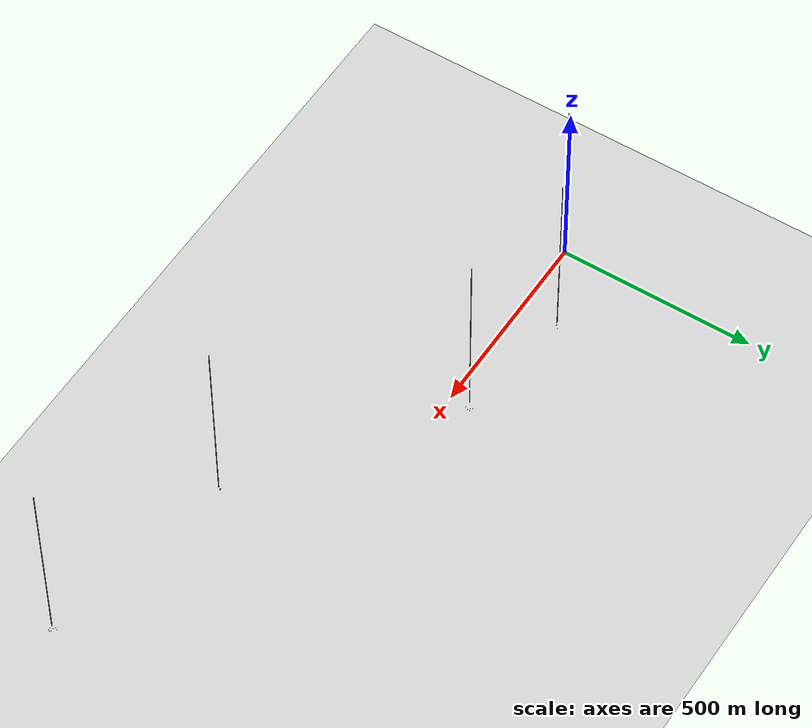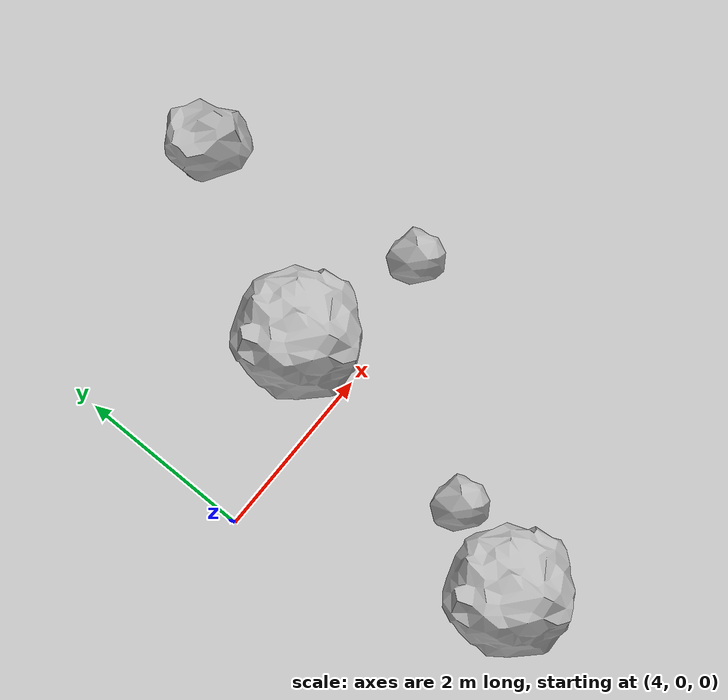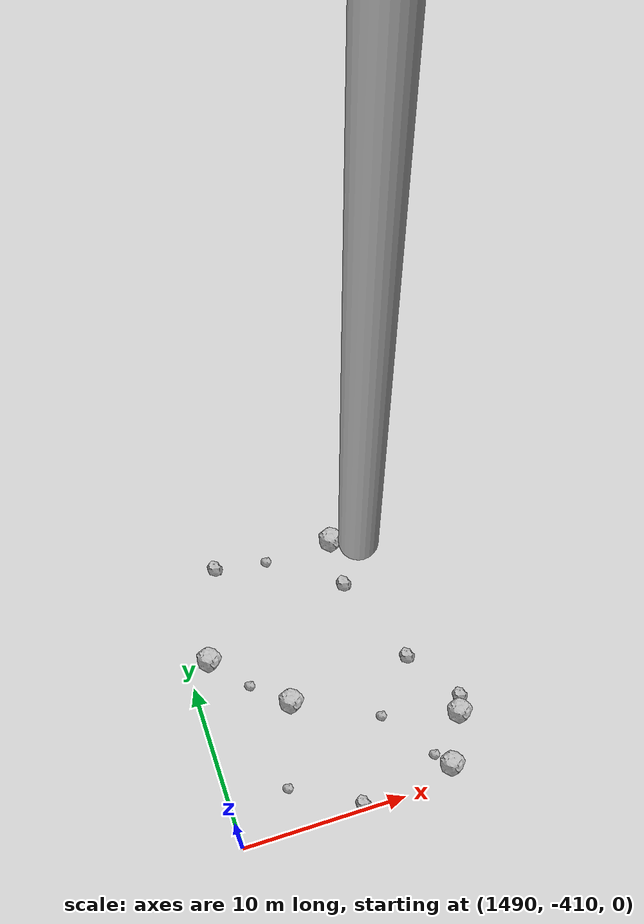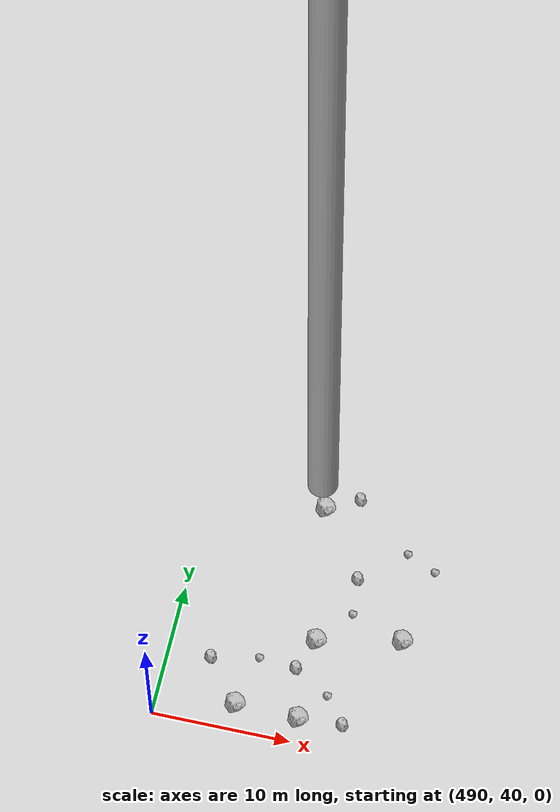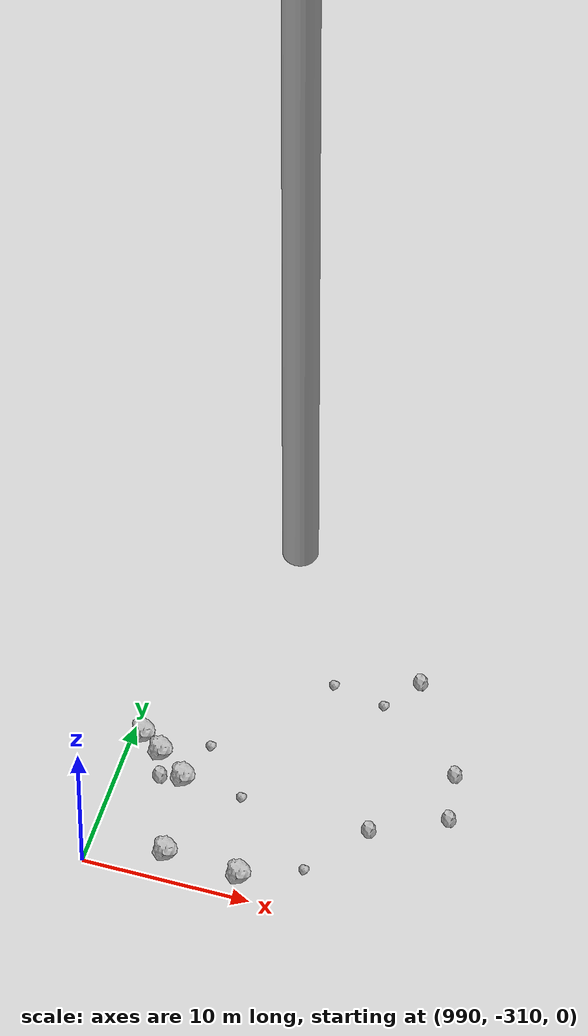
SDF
<?xml version="1.0" ?>
<sdf version="1.6">
  <world name="default">

    <include>
      <uri>model://custom_ground</uri>
    </include>

    <include>
      <uri>model://sun</uri>
    </include>

    <spherical_coordinates>
      <surface_model>EARTH_WGS84</surface_model>
      <latitude_deg>38.161479</latitude_deg>
      <longitude_deg>-122.454630</longitude_deg>
      <elevation>488.0</elevation>
      <heading_deg>90</heading_deg>
    </spherical_coordinates>

    <model name="rock1_0_0">
      <include>
        <uri>model://rock1</uri>
        <pose>16.75536092948324 6.011846123286226 0.5 0 0 0</pose>
      </include>
    </model>
    <model name="rock1_0_1">
      <include>
        <uri>model://rock1</uri>
        <pose>5.373063982227135 -2.7838303401648474 0.5 0 0 0</pose>
      </include>
    </model>
    <model name="rock1_0_2">
      <include>
        <uri>model://rock1</uri>
        <pose>6.055891209628972 0.7670467506767782 0.5 0 0 0</pose>
      </include>
    </model>
    <model name="rock1_0_3">
      <include>
        <uri>model://rock1</uri>
        <pose>16.695276076906815 3.7788987444200046 0.5 0 0 0</pose>
      </include>
    </model>
    <model name="rock1_0_4">
      <include>
        <uri>model://rock1</uri>
        <pose>3.7205431522614862 4.717453986573162 0.5 0 0 0</pose>
      </include>
    </model>
    <model name="rock2_0_0">
      <include>
        <uri>model://rock2</uri>
        <pose>10.212944082409006 2.7929742771649586 0.3 0 0 0</pose>
      </include>
    </model>
    <model name="rock2_0_1">
      <include>
        <uri>model://rock2</uri>
        <pose>7.985061977572618 7.250110403806747 0.3 0 0 0</pose>
      </include>
    </model>
    <model name="rock2_0_2">
      <include>
        <uri>model://rock2</uri>
        <pose>7.025169342337188 2.9202596769850118 0.3 0 0 0</pose>
      </include>
    </model>
    <model name="rock2_0_3">
      <include>
        <uri>model://rock2</uri>
        <pose>10.22742318625638 6.598344227592893 0.3 0 0 0</pose>
      </include>
    </model>
    <model name="rock2_0_4">
      <include>
        <uri>model://rock2</uri>
        <pose>15.779914251016056 4.533617211451773 0.3 0 0 0</pose>
      </include>
    </model>
    <model name="rock3_0_0">
      <include>
        <uri>model://rock3</uri>
        <pose>5.7174701227669145 -1.7845742878398916 0.2 0 0 0</pose>
      </include>
    </model>
    <model name="rock3_0_1">
      <include>
        <uri>model://rock3</uri>
        <pose>3.6508348361184995 5.500822756719469 0.2 0 0 0</pose>
      </include>
    </model>
    <model name="rock3_0_2">
      <include>
        <uri>model://rock3</uri>
        <pose>7.489139932292705 0.31277892143767616 0.2 0 0 0</pose>
      </include>
    </model>
    <model name="rock3_0_3">
      <include>
        <uri>model://rock3</uri>
        <pose>3.7442643942394582 -4.513679011473048 0.2 0 0 0</pose>
      </include>
    </model>
    <model name="rock3_0_4">
      <include>
        <uri>model://rock3</uri>
        <pose>8.56160840763617 -6.707526330036724 0.2 0 0 0</pose>
      </include>
    </model>
    <model name="rock1_1_0">
      <include>
        <uri>model://rock1</uri>
        <pose>208.91018218934886 97.95559591392225 0.5 0 0 0</pose>
      </include>
    </model>
    <model name="rock1_1_1">
      <include>
        <uri>model://rock1</uri>
        <pose>200.11412527932035 109.67917202525518 0.5 0 0 0</pose>
      </include>
    </model>
    <model name="rock1_1_2">
      <include>
        <uri>model://rock1</uri>
        <pose>201.37648939737065 102.24317822285772 0.5 0 0 0</pose>
      </include>
    </model>
    <model name="rock1_1_3">
      <include>
        <uri>model://rock1</uri>
        <pose>208.2151242653198 102.51446383550191 0.5 0 0 0</pose>
      </include>
    </model>
    <model name="rock1_1_4">
      <include>
        <uri>model://rock1</uri>
        <pose>194.57916281101802 94.45121176260324 0.5 0 0 0</pose>
      </include>
    </model>
    <model name="rock2_1_0">
      <include>
        <uri>model://rock2</uri>
        <pose>192.13632553431674 103.30738213552497 0.3 0 0 0</pose>
      </include>
    </model>
    <model name="rock2_1_1">
      <include>
        <uri>model://rock2</uri>
        <pose>200.51431706467932 93.70171141372403 0.3 0 0 0</pose>
      </include>
    </model>
    <model name="rock2_1_2">
      <include>
        <uri>model://rock2</uri>
        <pose>191.9173212214077 95.59468158177584 0.3 0 0 0</pose>
      </include>
    </model>
    <model name="rock2_1_3">
      <include>
        <uri>model://rock2</uri>
        <pose>194.19034094761201 102.54653585219211 0.3 0 0 0</pose>
      </include>
    </model>
    <model name="rock2_1_4">
      <include>
        <uri>model://rock2</uri>
        <pose>192.07705622148805 97.73554979908263 0.3 0 0 0</pose>
      </include>
    </model>
    <model name="rock3_1_0">
      <include>
        <uri>model://rock3</uri>
        <pose>205.3273769444897 97.63456514518103 0.2 0 0 0</pose>
      </include>
    </model>
    <model name="rock3_1_1">
      <include>
        <uri>model://rock3</uri>
        <pose>202.53466523676846 104.7612474895591 0.2 0 0 0</pose>
      </include>
    </model>
    <model name="rock3_1_2">
      <include>
        <uri>model://rock3</uri>
        <pose>193.01948003934422 104.52249969212684 0.2 0 0 0</pose>
      </include>
    </model>
    <model name="rock3_1_3">
      <include>
        <uri>model://rock3</uri>
        <pose>201.27263764788813 96.26210694451106 0.2 0 0 0</pose>
      </include>
    </model>
    <model name="rock3_1_4">
      <include>
        <uri>model://rock3</uri>
        <pose>202.45292727314157 108.58835960625771 0.2 0 0 0</pose>
      </include>
    </model>
    <model name="rock1_2_0">
      <include>
        <uri>model://rock1</uri>
        <pose>506.0982356611767 49.1950598980764 0.5 0 0 0</pose>
      </include>
    </model>
    <model name="rock1_2_1">
      <include>
        <uri>model://rock1</uri>
        <pose>498.44586708480205 58.39269333249753 0.5 0 0 0</pose>
      </include>
    </model>
    <model name="rock1_2_2">
      <include>
        <uri>model://rock1</uri>
        <pose>500.1147617069282 47.91203452708026 0.5 0 0 0</pose>
      </include>
    </model>
    <model name="rock1_2_3">
      <include>
        <uri>model://rock1</uri>
        <pose>495.6341193860309 41.85614020262877 0.5 0 0 0</pose>
      </include>
    </model>
    <model name="rock1_2_4">
      <include>
        <uri>model://rock1</uri>
        <pose>500.1906152120664 41.74611074778019 0.5 0 0 0</pose>
      </include>
    </model>
    <model name="rock2_2_0">
      <include>
        <uri>model://rock2</uri>
        <pose>499.15204207866674 45.56671791442962 0.3 0 0 0</pose>
      </include>
    </model>
    <model name="rock2_2_1">
      <include>
        <uri>model://rock2</uri>
        <pose>500.7535406349838 59.72307612324845 0.3 0 0 0</pose>
      </include>
    </model>
    <model name="rock2_2_2">
      <include>
        <uri>model://rock2</uri>
        <pose>503.2906903918067 42.00364432631538 0.3 0 0 0</pose>
      </include>
    </model>
    <model name="rock2_2_3">
      <include>
        <uri>model://rock2</uri>
        <pose>501.91957700906164 53.39447886114854 0.3 0 0 0</pose>
      </include>
    </model>
    <model name="rock2_2_4">
      <include>
        <uri>model://rock2</uri>
        <pose>493.07772804728535 45.06856080699913 0.3 0 0 0</pose>
      </include>
    </model>
    <model name="rock3_2_0">
      <include>
        <uri>model://rock3</uri>
        <pose>502.1623244675541 50.55592238819548 0.2 0 0 0</pose>
      </include>
    </model>
    <model name="rock3_2_1">
      <include>
        <uri>model://rock3</uri>
        <pose>496.4424833097741 45.74962260314906 0.2 0 0 0</pose>
      </include>
    </model>
    <model name="rock3_2_2">
      <include>
        <uri>model://rock3</uri>
        <pose>507.2156172433701 55.09980235799881 0.2 0 0 0</pose>
      </include>
    </model>
    <model name="rock3_2_3">
      <include>
        <uri>model://rock3</uri>
        <pose>505.0293368986568 56.114901254667664 0.2 0 0 0</pose>
      </include>
    </model>
    <model name="rock3_2_4">
      <include>
        <uri>model://rock3</uri>
        <pose>501.7848149172753 43.925976167416444 0.2 0 0 0</pose>
      </include>
    </model>
    <model name="rock1_3_0">
      <include>
        <uri>model://rock1</uri>
        <pose>990.6020801692991 -300.5555024012531 0.5 0 0 0</pose>
      </include>
    </model>
    <model name="rock1_3_1">
      <include>
        <uri>model://rock1</uri>
        <pose>991.9660176988062 -301.4837458214081 0.5 0 0 0</pose>
      </include>
    </model>
    <model name="rock1_3_2">
      <include>
        <uri>model://rock1</uri>
        <pose>998.932404908679 -308.55304517641673 0.5 0 0 0</pose>
      </include>
    </model>
    <model name="rock1_3_3">
      <include>
        <uri>model://rock1</uri>
        <pose>993.787574132282 -302.90252880725797 0.5 0 0 0</pose>
      </include>
    </model>
    <model name="rock1_3_4">
      <include>
        <uri>model://rock1</uri>
        <pose>994.4242568944456 -308.24171257587017 0.5 0 0 0</pose>
      </include>
    </model>
    <model name="rock2_3_0">
      <include>
        <uri>model://rock2</uri>
        <pose>992.4597913695113 -303.09967904549677 0.3 0 0 0</pose>
      </include>
    </model>
    <model name="rock2_3_1">
      <include>
        <uri>model://rock2</uri>
        <pose>1008.8283962765593 -298.0851765540415 0.3 0 0 0</pose>
      </include>
    </model>
    <model name="rock2_3_2">
      <include>
        <uri>model://rock2</uri>
        <pose>1005.1621488417204 -303.3020104470233 0.3 0 0 0</pose>
      </include>
    </model>
    <model name="rock2_3_3">
      <include>
        <uri>model://rock2</uri>
        <pose>1005.0437602836779 -292.20510984090396 0.3 0 0 0</pose>
      </include>
    </model>
    <model name="rock2_3_4">
      <include>
        <uri>model://rock2</uri>
        <pose>1009.3578997579323 -301.2202497419908 0.3 0 0 0</pose>
      </include>
    </model>
    <model name="rock3_3_0">
      <include>
        <uri>model://rock3</uri>
        <pose>997.4168497860115 -303.22370119828656 0.2 0 0 0</pose>
      </include>
    </model>
    <model name="rock3_3_1">
      <include>
        <uri>model://rock3</uri>
        <pose>994.6245122469663 -300.2094371091744 0.2 0 0 0</pose>
      </include>
    </model>
    <model name="rock3_3_2">
      <include>
        <uri>model://rock3</uri>
        <pose>1003.4351164725308 -294.4596887140498 0.2 0 0 0</pose>
      </include>
    </model>
    <model name="rock3_3_3">
      <include>
        <uri>model://rock3</uri>
        <pose>1000.2060625182175 -293.857257881568 0.2 0 0 0</pose>
      </include>
    </model>
    <model name="rock3_3_4">
      <include>
        <uri>model://rock3</uri>
        <pose>1002.3716042877662 -307.07156361838435 0.2 0 0 0</pose>
      </include>
    </model>
    <model name="rock1_4_0">
      <include>
        <uri>model://rock1</uri>
        <pose>1504.6754222427003 -406.1600127248582 0.5 0 0 0</pose>
      </include>
    </model>
    <model name="rock1_4_1">
      <include>
        <uri>model://rock1</uri>
        <pose>1491.375896255959 -398.6442559780725 0.5 0 0 0</pose>
      </include>
    </model>
    <model name="rock1_4_2">
      <include>
        <uri>model://rock1</uri>
        <pose>1503.2393594158125 -409.02057041118417 0.5 0 0 0</pose>
      </include>
    </model>
    <model name="rock1_4_3">
      <include>
        <uri>model://rock1</uri>
        <pose>1500.6340017707898 -393.68564409985026 0.5 0 0 0</pose>
      </include>
    </model>
    <model name="rock1_4_4">
      <include>
        <uri>model://rock1</uri>
        <pose>1495.3118883169698 -402.55418984951433 0.5 0 0 0</pose>
      </include>
    </model>
    <model name="rock2_4_0">
      <include>
        <uri>model://rock2</uri>
        <pose>1497.5001917852273 -409.6262122257828 0.3 0 0 0</pose>
      </include>
    </model>
    <model name="rock2_4_1">
      <include>
        <uri>model://rock2</uri>
        <pose>1504.9905124809136 -405.21692404906 0.3 0 0 0</pose>
      </include>
    </model>
    <model name="rock2_4_2">
      <include>
        <uri>model://rock2</uri>
        <pose>1502.7500325256972 -401.96808027266786 0.3 0 0 0</pose>
      </include>
    </model>
    <model name="rock2_4_3">
      <include>
        <uri>model://rock2</uri>
        <pose>1500.5150411971847 -396.51532262344085 0.3 0 0 0</pose>
      </include>
    </model>
    <model name="rock2_4_4">
      <include>
        <uri>model://rock2</uri>
        <pose>1493.3270759919376 -393.2367388416374 0.3 0 0 0</pose>
      </include>
    </model>
    <model name="rock3_4_0">
      <include>
        <uri>model://rock3</uri>
        <pose>1493.2088325411762 -400.8876066629046 0.2 0 0 0</pose>
      </include>
    </model>
    <model name="rock3_4_1">
      <include>
        <uri>model://rock3</uri>
        <pose>1502.4046865273715 -408.1696930453415 0.2 0 0 0</pose>
      </include>
    </model>
    <model name="rock3_4_2">
      <include>
        <uri>model://rock3</uri>
        <pose>1500.1335202816301 -405.00854414484866 0.2 0 0 0</pose>
      </include>
    </model>
    <model name="rock3_4_3">
      <include>
        <uri>model://rock3</uri>
        <pose>1496.411760531608 -393.78995246686355 0.2 0 0 0</pose>
      </include>
    </model>
    <model name="rock3_4_4">
      <include>
        <uri>model://rock3</uri>
        <pose>1493.547826979591 -407.47074721792404 0.2 0 0 0</pose>
      </include>
    </model>

    <model name="cylinder_1">
      <static>true</static>
      <link name="link">
        <visual name="visual">
          <geometry>
            <cylinder>
              <radius>1</radius>
              <length>500</length>
            </cylinder>
          </geometry>
        </visual>
      </link>
      <pose>10 0 270 0 0 0</pose>
    </model>

    <model name="cylinder_2">
      <static>true</static>
      <link name="link">
        <visual name="visual">
          <geometry>
            <cylinder>
              <radius>1</radius>
              <length>500</length>
            </cylinder>
          </geometry>
        </visual>
      </link>
      <pose>200 100 270 0 0 0</pose>
    </model>

    <model name="cylinder_3">
      <static>true</static>
      <link name="link">
        <visual name="visual">
          <geometry>
            <cylinder>
              <radius>1</radius>
              <length>500</length>
            </cylinder>
          </geometry>
        </visual>
      </link>
      <pose>500 50 270 0 0 0</pose>
    </model>

    <model name="cylinder_4">
      <static>true</static>
      <link name="link">
        <visual name="visual">
          <geometry>
            <cylinder>
              <radius>1</radius>
              <length>500</length>
            </cylinder>
          </geometry>
        </visual>
      </link>
      <pose>1000 -300 270 0 0 0</pose>
    </model>

    <model name="cylinder_5">
      <static>true</static>
      <link name="link">
        <visual name="visual">
          <geometry>
            <cylinder>
              <radius>1</radius>
              <length>500</length>
            </cylinder>
          </geometry>
        </visual>
      </link>
      <pose>1500 -400 270 0 0 0</pose>
    </model>

  </world>
</sdf>

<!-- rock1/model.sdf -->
<sdf version="1.6">
  <model name="rock1">
    <static>true</static> <!-- Set to true if the model should not move -->
    <pose>0 0 0 0 0 0</pose>

    <!--z offset is 0.5 for full scale-->

    <link name="link">
      <collision name="rock1_collision">
        <geometry>
          <mesh>
            <uri>model://meshes/rock1.dae</uri>
          </mesh>
        </geometry>
      </collision>
      <visual name="rock1_visual">
        <geometry>
          <mesh>
            <uri>model://meshes/rock1.dae</uri>
          </mesh>
        </geometry>
        <material>
          <script>
            <uri>model://materials/scripts/sand_pebbles.material</uri>
            <name>custom_ground/Image</name>
          </script>
        </material>
      </visual>
    </link>
  </model>
</sdf>

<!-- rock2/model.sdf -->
<sdf version="1.6">
  <model name="rock2">
    <static>true</static> <!-- Set to true if the model should not move -->
    <pose>0 0 0 0 0 0</pose>

    <!--z offset is 0.3 for full scale-->

    <link name="link">
      <collision name="rock2_collision">
        <geometry>
          <mesh>
            <uri>model://meshes/rock2.dae</uri>
          </mesh>
        </geometry>
      </collision>
      <visual name="rock2_visual">
        <geometry>
          <mesh>
            <uri>model://meshes/rock2.dae</uri>
          </mesh>
        </geometry>
        <material>
          <script>
            <uri>model://materials/scripts/sand_pebbles.material</uri>
            <name>custom_ground/Image</name>
          </script>
        </material>
      </visual>
    </link>
  </model>
</sdf>

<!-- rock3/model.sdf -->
<sdf version="1.6">
  <model name="rock3">
    <static>true</static> <!-- Set to true if the model should not move -->
    <pose>0 0 0 0 0 0</pose>

    <!--z offset is 0.2 for full scale-->

    <link name="link">
      <collision name="rock3_collision">
        <geometry>
          <mesh>
            <uri>model://meshes/rock3.dae</uri>
          </mesh>
        </geometry>
      </collision>
      <visual name="rock3_visual">
        <geometry>
          <mesh>
            <uri>model://meshes/rock3.dae</uri>
          </mesh>
        </geometry>
        <material>
          <script>
            <uri>model://materials/scripts/sand_pebbles.material</uri>
            <name>custom_ground/Image</name>
          </script>
        </material>
      </visual>
    </link>
  </model>
</sdf>

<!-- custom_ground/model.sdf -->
<sdf version="1.6">
  <model name="custom_ground">
    <static>true</static> <!-- Ground is static and immovable -->
    <link name="ground_link">
      <pose>240 0 0 0 0 0</pose> <!-- Position and orientation relative to the world -->
      <!-- Visual Representation -->
      <visual name="ground_visual">
        <geometry>
          <plane>
            <normal>0 0 1</normal> <!-- Upward facing plane -->
            <size>500 500</size> <!-- Size of the plane -->
          </plane>
        </geometry>
        <material>
          <script>
            <uri>model://materials/scripts/sand_pebbles.material</uri>
            <name>custom_ground/Image</name>
          </script>
        </material>
      </visual>

      <!-- Collision Representation -->
      <collision name="ground_collision">
        <geometry>
          <plane>
            <normal>0 0 1</normal>
            <size>100 100</size>
          </plane>
        </geometry>
      </collision>

    </link>
  </model>
</sdf>
